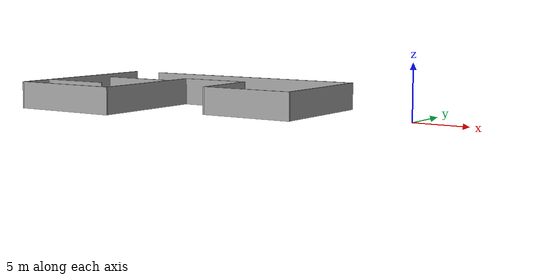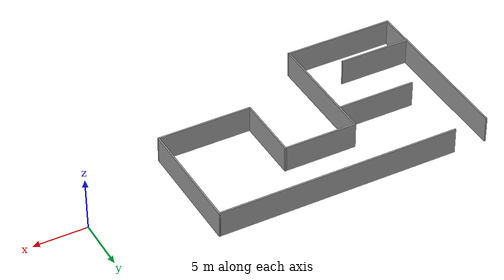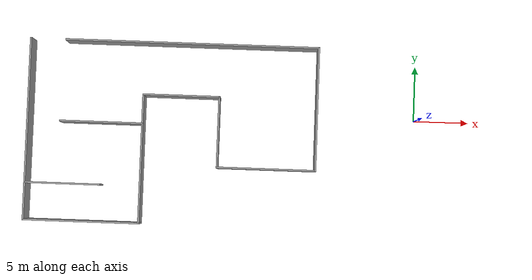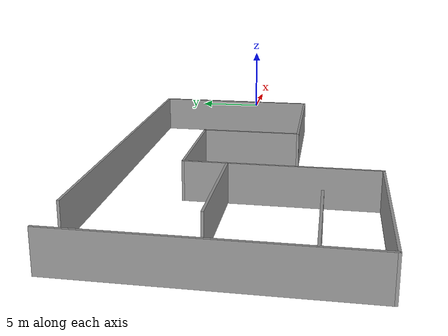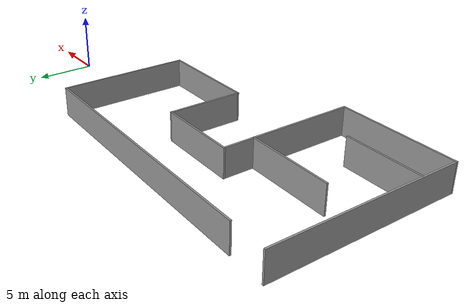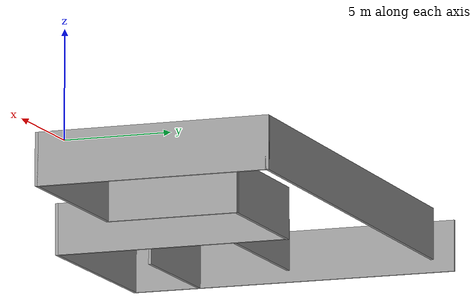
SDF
<?xml version='1.0'?>
<sdf version='1.7'>
  <model name='building1'>
    <pose>-17.5829 -1.98618 0 0 -0 0</pose>
    <link name='Wall_0'>
      <collision name='Wall_0_Collision'>
        <geometry>
          <box>
            <size>23 0.15 2.5</size>
          </box>
        </geometry>
        <pose>0 0 1.25 0 -0 0</pose>
      </collision>
      <visual name='Wall_0_Visual'>
        <pose>0 0 1.25 0 -0 0</pose>
        <geometry>
          <box>
            <size>23 0.15 2.5</size>
          </box>
        </geometry>
        <material>
          <script>
            <uri>file://media/materials/scripts/gazebo.material</uri>
            <name>Gazebo/Grey</name>
          </script>
          <ambient>1 1 1 1</ambient>
        </material>
        <meta>
          <layer>0</layer>
        </meta>
      </visual>
      <pose>-2.88289 8.175 0 0 -0 0</pose>
    </link>
    <link name='Wall_1'>
      <collision name='Wall_1_Collision'>
        <geometry>
          <box>
            <size>11.25 0.15 2.5</size>
          </box>
        </geometry>
        <pose>0 0 1.25 0 -0 0</pose>
      </collision>
      <visual name='Wall_1_Visual'>
        <pose>0 0 1.25 0 -0 0</pose>
        <geometry>
          <box>
            <size>11.25 0.15 2.5</size>
          </box>
        </geometry>
        <material>
          <script>
            <uri>file://media/materials/scripts/gazebo.material</uri>
            <name>Gazebo/Grey</name>
          </script>
          <ambient>1 1 1 1</ambient>
        </material>
        <meta>
          <layer>0</layer>
        </meta>
      </visual>
      <pose>8.54211 2.625 0 0 -0 -1.5708</pose>
    </link>
    <link name='Wall_15'>
      <collision name='Wall_15_Collision'>
        <geometry>
          <box>
            <size>6.75 0.15 2.5</size>
          </box>
        </geometry>
        <pose>0 0 1.25 0 -0 0</pose>
      </collision>
      <visual name='Wall_15_Visual'>
        <pose>0 0 1.25 0 -0 0</pose>
        <geometry>
          <box>
            <size>6.75 0.15 2.5</size>
          </box>
        </geometry>
        <material>
          <script>
            <uri>file://media/materials/scripts/gazebo.material</uri>
            <name>Gazebo/Grey</name>
          </script>
          <ambient>1 1 1 1</ambient>
        </material>
        <meta>
          <layer>0</layer>
        </meta>
      </visual>
      <pose>-14.1291 -4.83644 0 0 -0 0</pose>
    </link>
    <link name='Wall_17'>
      <collision name='Wall_17_Collision'>
        <geometry>
          <box>
            <size>7.5 0.15 2.5</size>
          </box>
        </geometry>
        <pose>0 0 1.25 0 -0 0</pose>
      </collision>
      <visual name='Wall_17_Visual'>
        <pose>0 0 1.25 0 -0 0</pose>
        <geometry>
          <box>
            <size>7.5 0.15 2.5</size>
          </box>
        </geometry>
        <material>
          <script>
            <uri>file://media/materials/scripts/gazebo.material</uri>
            <name>Gazebo/Grey</name>
          </script>
          <ambient>1 1 1 1</ambient>
        </material>
        <meta>
          <layer>0</layer>
        </meta>
      </visual>
      <pose>-10.8671 0.792164 0 0 -0 3.14159</pose>
    </link>
    <link name='Wall_2'>
      <collision name='Wall_2_Collision'>
        <geometry>
          <box>
            <size>9 0.15 2.5</size>
          </box>
        </geometry>
        <pose>0 0 1.25 0 -0 0</pose>
      </collision>
      <visual name='Wall_2_Visual'>
        <pose>0 0 1.25 0 -0 0</pose>
        <geometry>
          <box>
            <size>9 0.15 2.5</size>
          </box>
        </geometry>
        <material>
          <script>
            <uri>file://media/materials/scripts/gazebo.material</uri>
            <name>Gazebo/Grey</name>
          </script>
          <ambient>1 1 1 1</ambient>
        </material>
        <meta>
          <layer>0</layer>
        </meta>
      </visual>
      <pose>4.11711 -2.925 0 0 -0 3.14159</pose>
    </link>
    <link name='Wall_3'>
      <collision name='Wall_3_Collision'>
        <geometry>
          <box>
            <size>6.5 0.15 2.5</size>
          </box>
        </geometry>
        <pose>0 0 1.25 0 -0 0</pose>
      </collision>
      <visual name='Wall_3_Visual'>
        <pose>0 0 1.25 0 -0 0</pose>
        <geometry>
          <box>
            <size>6.5 0.15 2.5</size>
          </box>
        </geometry>
        <material>
          <script>
            <uri>file://media/materials/scripts/gazebo.material</uri>
            <name>Gazebo/Grey</name>
          </script>
          <ambient>1 1 1 1</ambient>
        </material>
        <meta>
          <layer>0</layer>
        </meta>
      </visual>
      <pose>-0.30789 0.25 0 0 -0 1.5708</pose>
    </link>
    <link name='Wall_4'>
      <collision name='Wall_4_Collision'>
        <geometry>
          <box>
            <size>7 0.15 2.5</size>
          </box>
        </geometry>
        <pose>0 0 1.25 0 -0 0</pose>
      </collision>
      <visual name='Wall_4_Visual'>
        <pose>0 0 1.25 0 -0 0</pose>
        <geometry>
          <box>
            <size>7 0.15 2.5</size>
          </box>
        </geometry>
        <material>
          <script>
            <uri>file://media/materials/scripts/gazebo.material</uri>
            <name>Gazebo/Grey</name>
          </script>
          <ambient>1 1 1 1</ambient>
        </material>
        <meta>
          <layer>0</layer>
        </meta>
      </visual>
      <pose>-3.73289 3.425 0 0 -0 3.14159</pose>
    </link>
    <link name='Wall_5'>
      <collision name='Wall_5_Collision'>
        <geometry>
          <box>
            <size>11.75 0.15 2.5</size>
          </box>
        </geometry>
        <pose>0 0 1.25 0 -0 0</pose>
      </collision>
      <visual name='Wall_5_Visual'>
        <pose>0 0 1.25 0 -0 0</pose>
        <geometry>
          <box>
            <size>11.75 0.15 2.5</size>
          </box>
        </geometry>
        <material>
          <script>
            <uri>file://media/materials/scripts/gazebo.material</uri>
            <name>Gazebo/Grey</name>
          </script>
          <ambient>1 1 1 1</ambient>
        </material>
        <meta>
          <layer>0</layer>
        </meta>
      </visual>
      <pose>-7.15789 -2.375 0 0 -0 -1.5708</pose>
    </link>
    <link name='Wall_6'>
      <collision name='Wall_6_Collision'>
        <geometry>
          <box>
            <size>10.5 0.15 2.5</size>
          </box>
        </geometry>
        <pose>0 0 1.25 0 -0 0</pose>
      </collision>
      <visual name='Wall_6_Visual'>
        <pose>0 0 1.25 0 -0 0</pose>
        <geometry>
          <box>
            <size>10.5 0.15 2.5</size>
          </box>
        </geometry>
        <material>
          <script>
            <uri>file://media/materials/scripts/gazebo.material</uri>
            <name>Gazebo/Grey</name>
          </script>
          <ambient>1 1 1 1</ambient>
        </material>
        <meta>
          <layer>0</layer>
        </meta>
      </visual>
      <pose>-12.3329 -8.175 0 0 -0 3.14159</pose>
    </link>
    <link name='Wall_7'>
      <collision name='Wall_7_Collision'>
        <geometry>
          <box>
            <size>16.5 0.15 2.5</size>
          </box>
        </geometry>
        <pose>0 0 1.25 0 -0 0</pose>
      </collision>
      <visual name='Wall_7_Visual'>
        <pose>0 0 1.25 0 -0 0</pose>
        <geometry>
          <box>
            <size>16.5 0.15 2.5</size>
          </box>
        </geometry>
        <material>
          <script>
            <uri>file://media/materials/scripts/gazebo.material</uri>
            <name>Gazebo/Grey</name>
          </script>
          <ambient>1 1 1 1</ambient>
        </material>
        <meta>
          <layer>0</layer>
        </meta>
      </visual>
      <pose>-17.5079 0 0 0 -0 1.5708</pose>
    </link>
    <static>1</static>
  </model>
</sdf>
